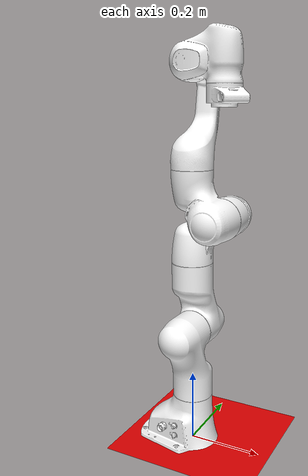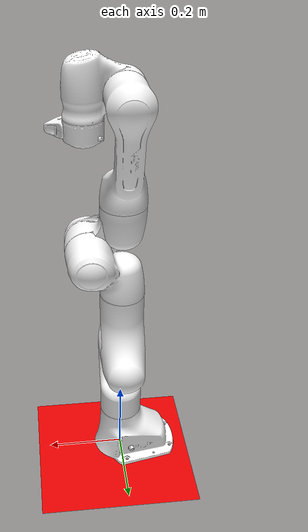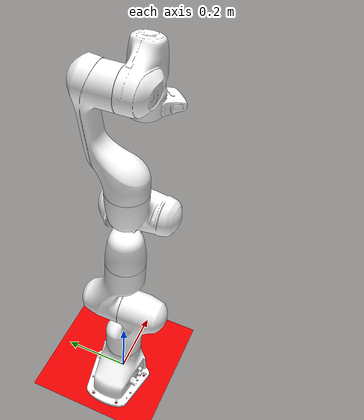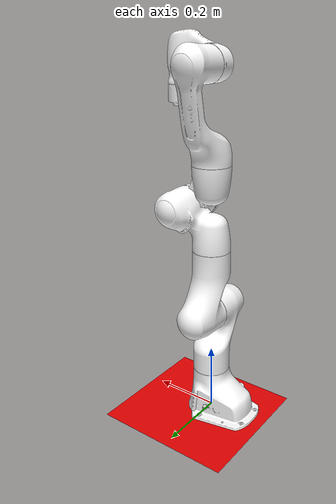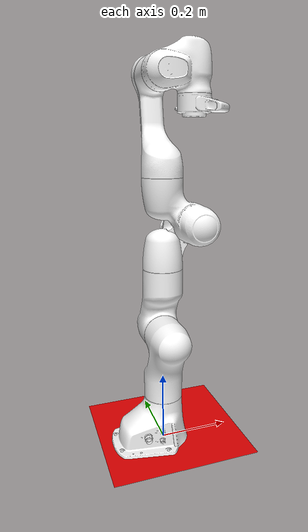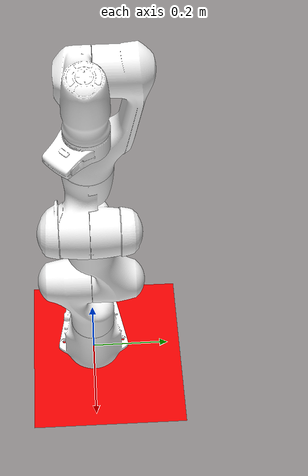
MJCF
<mujoco>
  <compiler angle="radian" meshdir="./mesh" texturedir="./texture" />
  <include file="panda.xml" />
  <worldbody>
    <light diffuse=".5 .5 .5" pos="0 0 3" dir="0 0 -1" />
    <geom type="plane" size="1 1 0.1" rgba=".9 0 0 1" />
  </worldbody>
</mujoco>

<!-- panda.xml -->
<mujoco model="panda">
  <compiler angle="radian"/>
  <default/>
  <asset>
    <mesh name="link0" file="link0.stl"/>
    <mesh name="link1" file="link1.stl"/>
    <mesh name="link2" file="link2.stl"/>
    <mesh name="link3" file="link3.stl"/>
    <mesh name="link4" file="link4.stl"/>
    <mesh name="link5" file="link5.stl"/>
    <mesh name="link6" file="link6.stl"/>
    <mesh name="link7" file="link7.stl"/>
  </asset>

  <actuator>
    <motor ctrllimited="true" ctrlrange="-87 87" forcelimited="true" forcerange="-87 87" joint="panda_joint1" name="panda_joint1" />
    <motor ctrllimited="true" ctrlrange="-87 87" forcelimited="true" forcerange="-87 87" joint="panda_joint2" name="panda_joint2" />
    <motor ctrllimited="true" ctrlrange="-87 87" forcelimited="true" forcerange="-87 87" joint="panda_joint3" name="panda_joint3" />
    <motor ctrllimited="true" ctrlrange="-87 87" forcelimited="true" forcerange="-87 87" joint="panda_joint4" name="panda_joint4" />
    <motor ctrllimited="true" ctrlrange="-12 12" forcelimited="true" forcerange="-12 12" joint="panda_joint5" name="panda_joint5" />
    <motor ctrllimited="true" ctrlrange="-12 12" forcelimited="true" forcerange="-12 12" joint="panda_joint6" name="panda_joint6" />
    <motor ctrllimited="true" ctrlrange="-12 12" forcelimited="true" forcerange="-12 12" joint="panda_joint7" name="panda_joint7" />
  </actuator>

  <worldbody>
    <geom type="mesh" rgba="1 1 1 1" mesh="link0"/>
    <body name="panda_link1" pos="0 0 0.333">
      <inertial pos="0 -0.0324958 -0.0675818" quat="0.981683 0.190521 0 0" mass="2.74" diaginertia="0.0180417 0.0177996 0.00432093"/>
      <joint name="panda_joint1" pos="0 0 0" axis="0 0 1" limited="true" range="-2.8973 2.8973" frictionloss="0.1"/>
      <geom type="mesh" rgba="1 1 1 1" mesh="link1"/>
      <body name="panda_link2" pos="0 0 0" quat="0.707107 -0.707107 0 0">
        <inertial pos="0 -0.06861 0.0322285" quat="0.560713 0.82801 0 0" mass="2.74" diaginertia="0.0182856 0.0180417 0.00432333"/>
        <joint name="panda_joint2" pos="0 0 0" axis="0 0 1" limited="true" range="-1.7628 1.7628" frictionloss="0.1"/>
        <geom type="mesh" rgba="1 1 1 1" mesh="link2"/>
        <body name="panda_link3" pos="0 -0.316 0" quat="0.707107 0.707107 0 0">
          <inertial pos="0.0469893 0.0316374 -0.031704" quat="0.433045 0.206217 0.388258 0.786894" mass="2.38" diaginertia="0.0115154 0.0112025 0.00300415"/>
          <joint name="panda_joint3" pos="0 0 0" axis="0 0 1" limited="true" range="-2.8973 2.8973" frictionloss="0.1"/>
          <geom type="mesh" rgba="1 1 1 1" mesh="link3"/>
          <body name="panda_link4" pos="0.0825 0 0" quat="0.707107 0.707107 0 0">
            <inertial pos="-0.0360446 0.0336853 0.031882" quat="0.351193 0.505642 -0.17835 0.767582" mass="2.38" diaginertia="0.0118373 0.0115967 0.0030681"/>
            <joint name="panda_joint4" pos="0 0 0" axis="0 0 1" limited="true" range="-3.0718 0.0698" frictionloss="0.1"/>
            <geom type="mesh" rgba="1 1 1 1" mesh="link4"/>
            <body name="panda_link5" pos="-0.0825 0.384 0" quat="0.707107 -0.707107 0 0">
              <inertial pos="0 0.0610427 -0.104176" quat="0.701706 -0.0997778 0.0995563 0.698385" mass="2.74" diaginertia="0.0311296 0.0303714 0.00218702"/>
              <joint name="panda_joint5" pos="0 0 0" axis="0 0 1" limited="true" range="-2.8973 2.8973" frictionloss="0.1"/>
              <geom type="mesh" rgba="1 1 1 1" mesh="link5"/>
              <body name="panda_link6" pos="0 0 0" quat="0.707107 0.707107 0 0">
                <inertial pos="0.0510509 0.009108 0.0106343" quat="-0.124537 0.772521 0.109907 0.612881" mass="1.55" diaginertia="0.0057297 0.00420201 0.0027288"/>
                <joint name="panda_joint6" pos="0 0 0" axis="0 0 1" limited="true" range="-0.0175 3.7525" frictionloss="0.1"/>
                <geom type="mesh" rgba="1 1 1 1" mesh="link6"/>
                <body name="panda_link7" pos="0.088 0 0" quat="0.707107 0.707107 0 0">
                  <inertial pos="0.00524251 0.00516952 0.105839" quat="0.230606 0.303369 0.771011 0.510226" mass="0.54" diaginertia="0.00557191 0.00354547 0.00276863"/>
                  <joint name="panda_joint7" pos="0 0 0" axis="0 0 1" limited="true" range="-2.8973 2.8973" frictionloss="0.1"/>
                  <geom type="mesh" rgba="1 1 1 1" mesh="link7"/>
                </body>
              </body>
            </body>
          </body>
        </body>
      </body>
    </body>
  </worldbody>
</mujoco>
